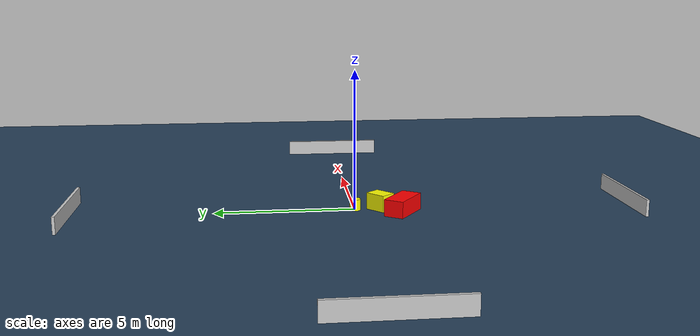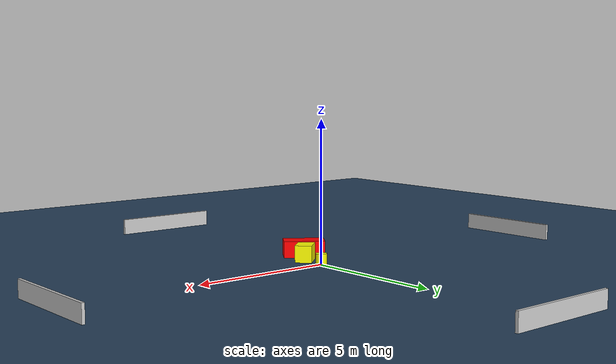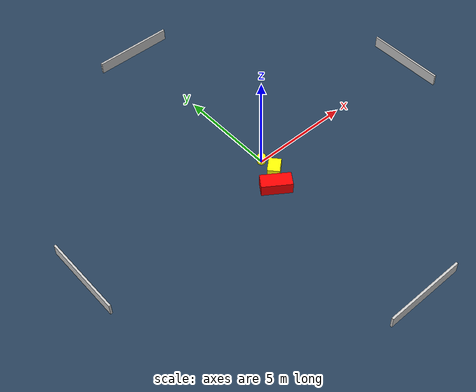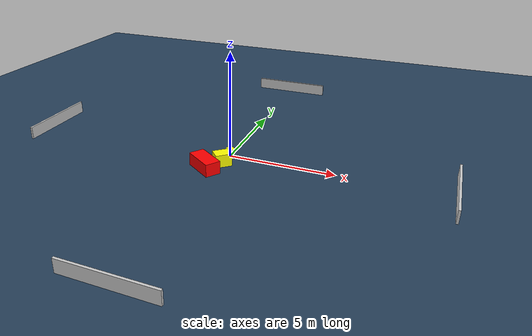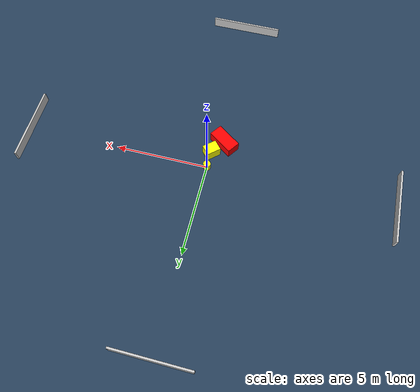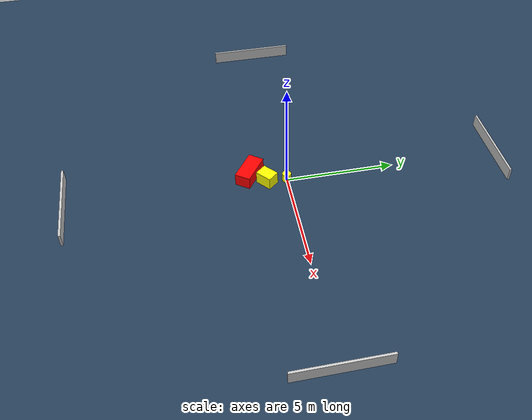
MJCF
<?xml version="1.0" ?>
<mujoco model="generated_environment">
  <option timestep="0.01" integrator="RK4" cone="elliptic"/>
  <default>
    <geom density="1"/>
  </default>
  <asset>
    <texture builtin="gradient" height="3072" name="skybox" rgb1="0.3 0.5 0.7" rgb2="0 0 0" type="skybox" width="512"/>
    <texture builtin="checker" height="300" name="groundplane" rgb1="0.2 0.3 0.4" rgb2="0.1 0.2 0.3" type="2d" width="300"/>
    <material name="groundplane" reflectance="0.2" texrepeat="5 5" texture="groundplane"/>
  </asset>
  <worldbody>
    <light dir="0 0 -1" directional="true" pos="0 0 1.5"/>
    <geom condim="3" friction="0.5 0.005 0.001" material="groundplane" name="floor" pos="0 0 0" size="0 0 0.05" type="plane"/>
    <body name="walls">
      <geom name="wall_1" condim="4" pos="-10.0 0.0 0.3" rgba="0.800000011920929 0.800000011920929 0.800000011920929 1.0" size="0.05 2.0 0.3" type="box"/>
      <geom name="wall_2" condim="4" pos="10.0 0.0 0.3" rgba="0.800000011920929 0.800000011920929 0.800000011920929 1.0" size="0.05 2.0 0.3" type="box"/>
      <geom name="wall_3" condim="4" pos="0.0 -10.0 0.3" rgba="0.800000011920929 0.800000011920929 0.800000011920929 1.0" size="2.0 0.05 0.3" type="box"/>
      <geom name="wall_4" condim="4" pos="0.0 10.0 0.3" rgba="0.800000011920929 0.800000011920929 0.800000011920929 1.0" size="2.0 0.05 0.3" type="box"/>
    </body>
    <body name="robot">
      <joint name="joint_x" type="slide" pos="0 0 0" axis="1 0 0"/>
      <joint name="joint_y" type="slide" pos="0 0 0" axis="0 1 0"/>
      <geom name="robot" type="cylinder" pos="0.0 0.0 0.2" size="0.2 0.2 0.0" mass="5.0" friction="1.0 0.005 0.0001" condim="4" rgba="1.0 1.0 0.0 1.0"/>
    </body>
    <body name="obstacle_1_movable">
      <geom name="obstacle_1_movable" condim="4" pos="-0.02202061375880733 -0.9041421550589251 0.3" euler="0 0 311.1959283777386" friction="0.0 0.005 0.001" rgba="1.0 1.0 0.0 1.0" size="0.29520850154276745 0.38945243656202666 0.3" type="box" mass="0.1"/>
      <joint type="free"/>
    </body>
    <body name="obstacle_2_static">
      <geom name="obstacle_2_static" condim="4" pos="-0.5657920338040958 -1.6277353817046465 0.3" euler="0 0 55.11506463252002" friction="0.0 0.005 0.001" rgba="1.0 0.0 0.0 1.0" size="0.36041734208886017 0.7364938084729908 0.3" type="box"/>
    </body>
  </worldbody>
  <actuator>
    <motor name="actuator_x" joint="joint_x" gear="1" ctrlrange="-1 1"/>
    <motor name="actuator_y" joint="joint_y" gear="1" ctrlrange="-1 1"/>
  </actuator>
</mujoco>
